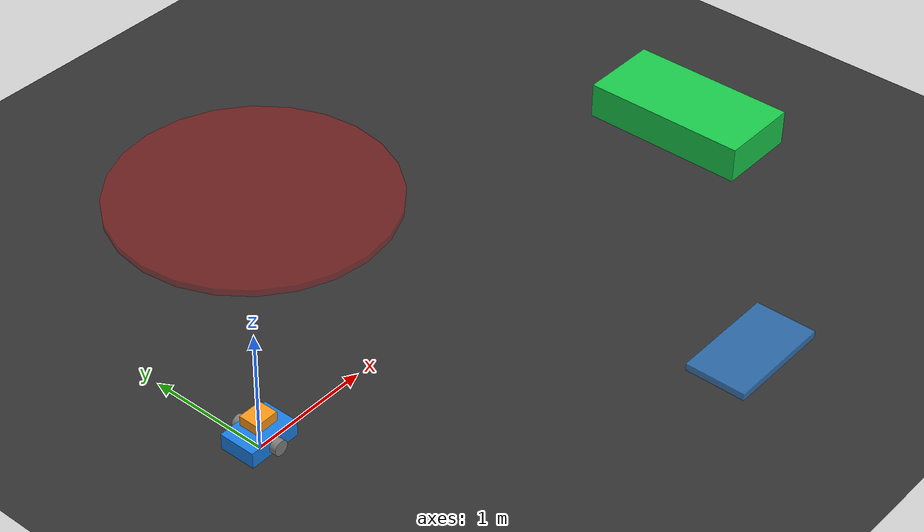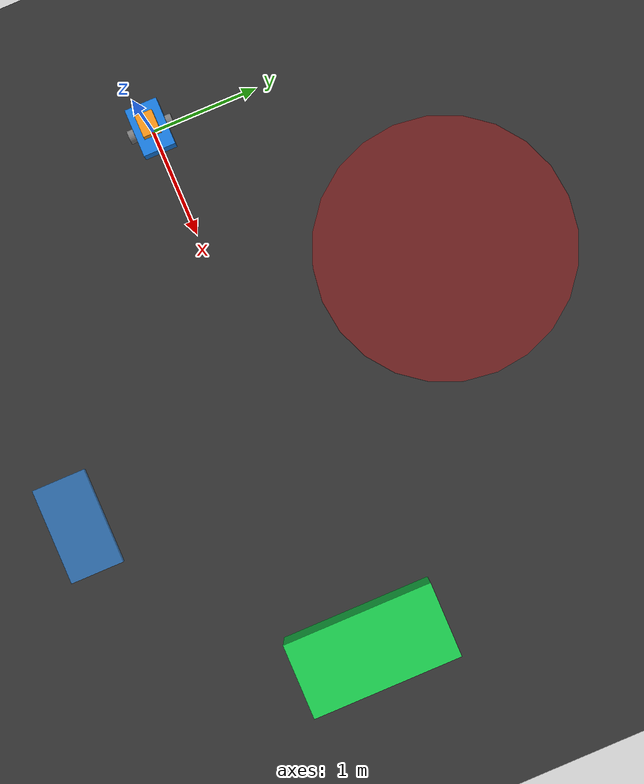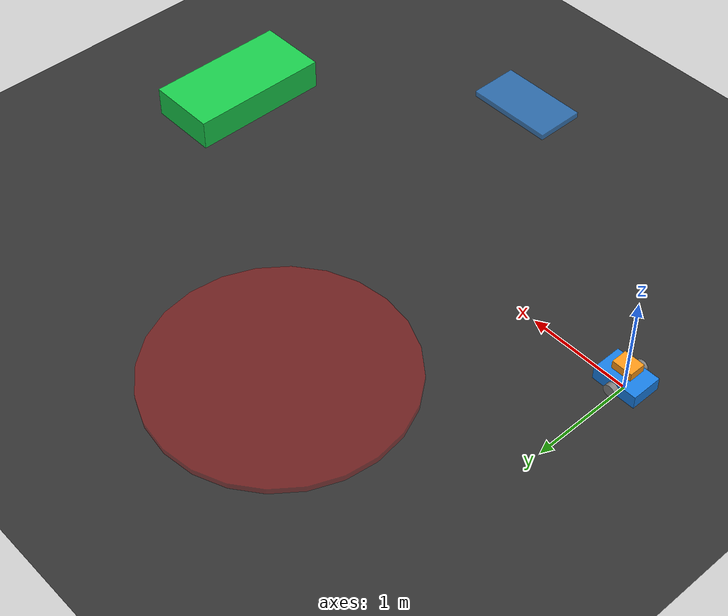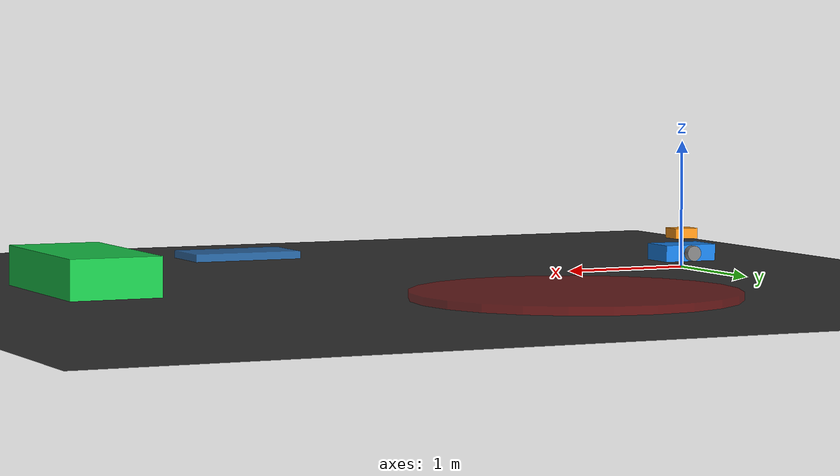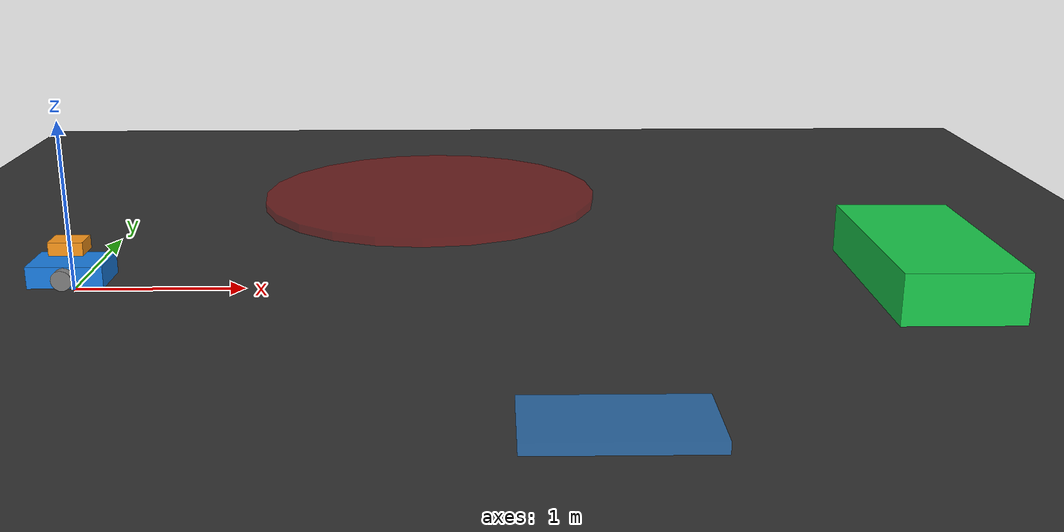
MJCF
<mujoco model="digital_twin_ops"><option timestep="0.01"/><worldbody><light pos="0 0 6"/><geom name="floor" type="plane" size="20 20 .1" rgba=".2 .2 .2 1"/><camera name="overview" pos="7 -11 8" xyaxes=".85 .52 0 -.32 .52 .79"/><camera name="rear_cam" mode="trackcom" target="base" pos="0 3 1.5"/><body name="base" pos="0 0 .12"><freejoint/><geom name="chassis" type="box" size=".22 .15 .065" mass="1.5" rgba=".1 .5 .9 1"/><site name="imu" pos="0 0 .1" size=".02"/><body name="left_wheel" pos="0 .18 0"><joint name="left_joint" type="hinge" axis="0 1 0"/><geom name="left_wheel_geom" type="cylinder" size=".06 .028" euler="90 0 0" mass=".16"/></body><body name="right_wheel" pos="0 -.18 0"><joint name="right_joint" type="hinge" axis="0 1 0"/><geom name="right_wheel_geom" type="cylinder" size=".06 .028" euler="90 0 0" mass=".16"/></body><body name="payload" pos="0 0 .15"><geom name="payload_geom" type="box" size=".1 .08 .04" mass=".4" rgba="1 .6 .1 1"/></body></body><body name="dock" pos="5 0 .15"><geom type="box" size=".35 .7 .15" rgba=".1 .8 .3 1"/></body><body name="parking_marker" mocap="true" pos="3 -2 .05"><geom type="box" size=".45 .25 .03" rgba=".2 .6 1 .6"/></body><body name="geofence_marker" mocap="true" pos="2 2 .03"><geom type="cylinder" size="1.2 .03" rgba="1 0 0 .3"/></body></worldbody><actuator><velocity joint="left_joint" kv="2" ctrlrange="-20 20"/><velocity joint="right_joint" kv="2" ctrlrange="-20 20"/></actuator><sensor><framepos objtype="body" objname="base"/><framequat objtype="body" objname="base"/><velocimeter site="imu"/><gyro site="imu"/><jointvel joint="left_joint"/><jointvel joint="right_joint"/></sensor></mujoco>
